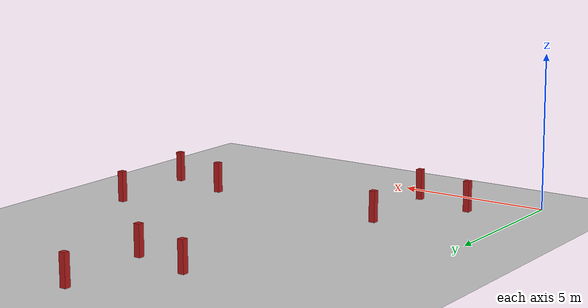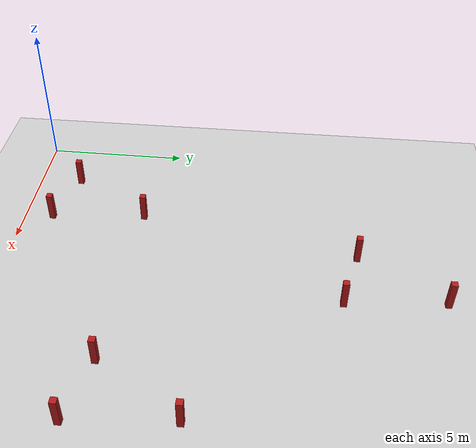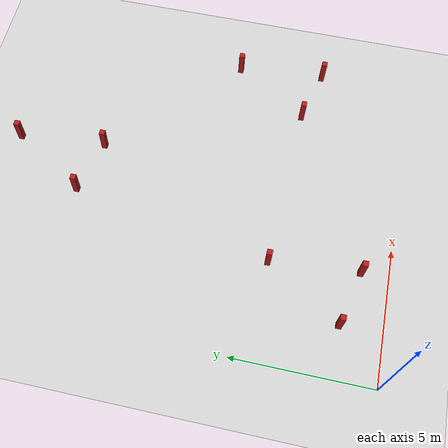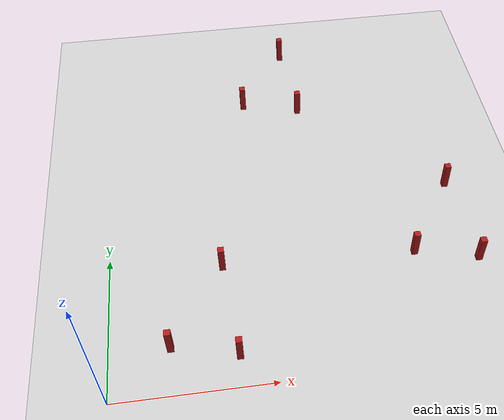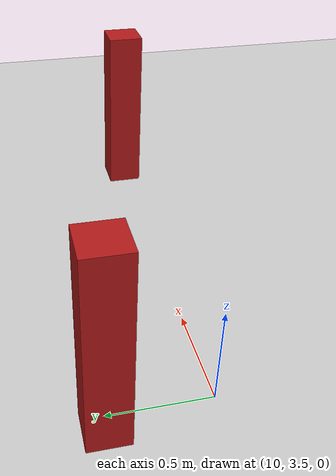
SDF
<sdf version="1.6">
 <world name="default">
  <light name="sun" type="directional">
   <pose>0 0 10 0 -0 0</pose>
   <diffuse>0.8 0.8 0.8 1</diffuse>
   <specular>0.1 0.1 0.1 1</specular>
   <attenuation>
    <range>1000</range>
    <constant>0.9</constant>
    <linear>0.01</linear>
    <quadratic>0.001</quadratic>
   </attenuation>
   <direction>-0.5 0.5 -1</direction>
  </light>
  <model name="ground_plane">
   <static>1</static>
   <link name="link">
    <collision name="collision">
     <geometry><plane><normal>0 0 1</normal><size>100 100</size></plane></geometry>
     <surface><friction><ode><mu>100</mu><mu2>50</mu2></ode></friction></surface>
    </collision>
    <visual name="visual">
     <cast_shadows>0</cast_shadows>
     <geometry><plane><normal>0 0 1</normal><size>100 100</size></plane></geometry>
     <material>
      <script><uri>file://media/materials/scripts/gazebo.material</uri><name>Gazebo/Grey</name></script>
     </material>
    </visual>
   </link>
  </model>
  <gravity>0 0 -9.8</gravity>
  <magnetic_field>6e-06 2.3e-05 -4.2e-05</magnetic_field>
  <atmosphere type="adiabatic"/>
  <physics name="default_physics" default="0" type="ode">
   <max_step_size>0.001</max_step_size>
   <real_time_factor>1</real_time_factor>
   <real_time_update_rate>1000</real_time_update_rate>
  </physics>
  <scene><ambient>0.4 0.4 0.4 1</ambient><background>0.7 0.7 0.7 1</background><shadows>1</shadows></scene>
  <spherical_coordinates>
   <surface_model>EARTH_WGS84</surface_model>
   <latitude_deg>0</latitude_deg>
   <longitude_deg>0</longitude_deg>
   <elevation>0</elevation>
   <heading_deg>0</heading_deg>
  </spherical_coordinates>
  <model name="obs">
   <link name="link">
    <pose>-0.320331 -0.567867 0 0 -0 0</pose>
    <inertial>
     <mass>1</mass>
     <inertia>
      <ixx>0.166667</ixx>
      <ixy>0</ixy>
      <ixz>0</ixz>
      <iyy>0.166667</iyy>
      <iyz>0</iyz>
      <izz>0.166667</izz>
     </inertia>
    </inertial>
    <visual name="visual">
     <geometry><box><size>0.2 0.2 1</size></box></geometry>
     <material>
      <script><name>Gazebo/Grey</name><uri>file://media/materials/scripts/gazebo.material</uri></script>
      <ambient>0.7 0.1 0.1 1</ambient>
      <diffuse>0.7 0.7 0.7 1</diffuse>
      <specular>0.01 0.01 0.01 1</specular>
      <emissive>0 0 0 1</emissive>
      <shader type="vertex"><normal_map>__default__</normal_map></shader>
     </material>
    </visual>
    <collision name="collision">
     <geometry><box><size>0.2 0.2 1</size></box></geometry>
     <surface>
      <friction>
       <ode><mu>1</mu><mu2>1</mu2><fdir1>0 0 0</fdir1><slip1>0</slip1><slip2>0</slip2></ode>
       <torsional>
        <coefficient>1</coefficient>
        <patch_radius>0</patch_radius>
        <surface_radius>0</surface_radius>
        <use_patch_radius>1</use_patch_radius>
        <ode><slip>0</slip></ode>
       </torsional>
      </friction>
      <bounce><restitution_coefficient>0</restitution_coefficient><threshold>1e+06</threshold></bounce>
      <contact>
       <collide_without_contact>0</collide_without_contact>
       <collide_without_contact_bitmask>1</collide_without_contact_bitmask>
       <collide_bitmask>1</collide_bitmask>
       <ode>
        <soft_cfm>0</soft_cfm>
        <soft_erp>0.2</soft_erp>
        <kp>1e+13</kp>
        <kd>1</kd>
        <max_vel>0.01</max_vel>
        <min_depth>0</min_depth>
       </ode>
       <bullet>
        <split_impulse>1</split_impulse>
        <split_impulse_penetration_threshold>-0.01</split_impulse_penetration_threshold>
        <soft_cfm>0</soft_cfm>
        <soft_erp>0.2</soft_erp>
        <kp>1e+13</kp>
        <kd>1</kd>
       </bullet>
      </contact>
     </surface>
    </collision>
   </link>
   <link name="link_clone">
    <pose>1.72328 -1.08027 -4e-06 2e-06 1e-06 4e-05</pose>
    <inertial>
     <mass>1</mass>
     <inertia>
      <ixx>0.166667</ixx>
      <ixy>0</ixy>
      <ixz>0</ixz>
      <iyy>0.166667</iyy>
      <iyz>0</iyz>
      <izz>0.166667</izz>
     </inertia>
    </inertial>
    <visual name="visual">
     <geometry><box><size>0.2 0.2 1</size></box></geometry>
     <material>
      <script><name>Gazebo/Grey</name><uri>file://media/materials/scripts/gazebo.material</uri></script>
      <ambient>0.7 0.1 0.1 1</ambient>
      <diffuse>0.7 0.7 0.7 1</diffuse>
      <specular>0.01 0.01 0.01 1</specular>
      <emissive>0 0 0 1</emissive>
      <shader type="vertex"><normal_map>__default__</normal_map></shader>
     </material>
    </visual>
    <collision name="collision">
     <geometry><box><size>0.2 0.2 1</size></box></geometry>
     <surface>
      <friction>
       <ode><mu>1</mu><mu2>1</mu2><fdir1>0 0 0</fdir1><slip1>0</slip1><slip2>0</slip2></ode>
       <torsional>
        <coefficient>1</coefficient>
        <patch_radius>0</patch_radius>
        <surface_radius>0</surface_radius>
        <use_patch_radius>1</use_patch_radius>
        <ode><slip>0</slip></ode>
       </torsional>
      </friction>
      <bounce><restitution_coefficient>0</restitution_coefficient><threshold>1e+06</threshold></bounce>
      <contact>
       <collide_without_contact>0</collide_without_contact>
       <collide_without_contact_bitmask>1</collide_without_contact_bitmask>
       <collide_bitmask>1</collide_bitmask>
       <ode>
        <soft_cfm>0</soft_cfm>
        <soft_erp>0.2</soft_erp>
        <kp>1e+13</kp>
        <kd>1</kd>
        <max_vel>0.01</max_vel>
        <min_depth>0</min_depth>
       </ode>
       <bullet>
        <split_impulse>1</split_impulse>
        <split_impulse_penetration_threshold>-0.01</split_impulse_penetration_threshold>
        <soft_cfm>0</soft_cfm>
        <soft_erp>0.2</soft_erp>
        <kp>1e+13</kp>
        <kd>1</kd>
       </bullet>
      </contact>
     </surface>
    </collision>
   </link>
   <link name="link_clone_0">
    <pose>1.44556 2.17598 3e-06 2e-06 1e-06 4e-05</pose>
    <inertial>
     <mass>1</mass>
     <inertia>
      <ixx>0.166667</ixx>
      <ixy>0</ixy>
      <ixz>0</ixz>
      <iyy>0.166667</iyy>
      <iyz>0</iyz>
      <izz>0.166667</izz>
     </inertia>
    </inertial>
    <visual name="visual">
     <geometry><box><size>0.2 0.2 1</size></box></geometry>
     <material>
      <script><name>Gazebo/Grey</name><uri>file://media/materials/scripts/gazebo.material</uri></script>
      <ambient>0.7 0.1 0.1 1</ambient>
      <diffuse>0.7 0.7 0.7 1</diffuse>
      <specular>0.01 0.01 0.01 1</specular>
      <emissive>0 0 0 1</emissive>
      <shader type="vertex"><normal_map>__default__</normal_map></shader>
     </material>
    </visual>
    <collision name="collision">
     <geometry><box><size>0.2 0.2 1</size></box></geometry>
     <surface>
      <friction>
       <ode><mu>1</mu><mu2>1</mu2><fdir1>0 0 0</fdir1><slip1>0</slip1><slip2>0</slip2></ode>
       <torsional>
        <coefficient>1</coefficient>
        <patch_radius>0</patch_radius>
        <surface_radius>0</surface_radius>
        <use_patch_radius>1</use_patch_radius>
        <ode><slip>0</slip></ode>
       </torsional>
      </friction>
      <bounce><restitution_coefficient>0</restitution_coefficient><threshold>1e+06</threshold></bounce>
      <contact>
       <collide_without_contact>0</collide_without_contact>
       <collide_without_contact_bitmask>1</collide_without_contact_bitmask>
       <collide_bitmask>1</collide_bitmask>
       <ode>
        <soft_cfm>0</soft_cfm>
        <soft_erp>0.2</soft_erp>
        <kp>1e+13</kp>
        <kd>1</kd>
        <max_vel>0.01</max_vel>
        <min_depth>0</min_depth>
       </ode>
       <bullet>
        <split_impulse>1</split_impulse>
        <split_impulse_penetration_threshold>-0.01</split_impulse_penetration_threshold>
        <soft_cfm>0</soft_cfm>
        <soft_erp>0.2</soft_erp>
        <kp>1e+13</kp>
        <kd>1</kd>
       </bullet>
      </contact>
     </surface>
    </collision>
   </link>
   <static>1</static>
   <pose>2.18274 2.08034 0.5 -2e-06 -1e-06 -4e-05</pose>
  </model>
  <model name="obs_clone">
   <link name="link">
    <pose>-0.320331 -0.567867 0 0 -0 0</pose>
    <inertial>
     <mass>1</mass>
     <inertia>
      <ixx>0.166667</ixx>
      <ixy>0</ixy>
      <ixz>0</ixz>
      <iyy>0.166667</iyy>
      <iyz>0</iyz>
      <izz>0.166667</izz>
     </inertia>
    </inertial>
    <visual name="visual">
     <geometry><box><size>0.2 0.2 1</size></box></geometry>
     <material>
      <script><name>Gazebo/Grey</name><uri>file://media/materials/scripts/gazebo.material</uri></script>
      <ambient>0.7 0.1 0.1 1</ambient>
      <diffuse>0.7 0.7 0.7 1</diffuse>
      <specular>0.01 0.01 0.01 1</specular>
      <emissive>0 0 0 1</emissive>
      <shader type="vertex"><normal_map>__default__</normal_map></shader>
     </material>
    </visual>
    <collision name="collision">
     <geometry><box><size>0.2 0.2 1</size></box></geometry>
     <surface>
      <friction>
       <ode><mu>1</mu><mu2>1</mu2><fdir1>0 0 0</fdir1><slip1>0</slip1><slip2>0</slip2></ode>
       <torsional>
        <coefficient>1</coefficient>
        <patch_radius>0</patch_radius>
        <surface_radius>0</surface_radius>
        <use_patch_radius>1</use_patch_radius>
        <ode><slip>0</slip></ode>
       </torsional>
      </friction>
      <bounce><restitution_coefficient>0</restitution_coefficient><threshold>1e+06</threshold></bounce>
      <contact>
       <collide_without_contact>0</collide_without_contact>
       <collide_without_contact_bitmask>1</collide_without_contact_bitmask>
       <collide_bitmask>1</collide_bitmask>
       <ode>
        <soft_cfm>0</soft_cfm>
        <soft_erp>0.2</soft_erp>
        <kp>1e+13</kp>
        <kd>1</kd>
        <max_vel>0.01</max_vel>
        <min_depth>0</min_depth>
       </ode>
       <bullet>
        <split_impulse>1</split_impulse>
        <split_impulse_penetration_threshold>-0.01</split_impulse_penetration_threshold>
        <soft_cfm>0</soft_cfm>
        <soft_erp>0.2</soft_erp>
        <kp>1e+13</kp>
        <kd>1</kd>
       </bullet>
      </contact>
     </surface>
    </collision>
   </link>
   <link name="link_clone">
    <pose>1.72328 -1.08027 -4e-06 2e-06 1e-06 4e-05</pose>
    <inertial>
     <mass>1</mass>
     <inertia>
      <ixx>0.166667</ixx>
      <ixy>0</ixy>
      <ixz>0</ixz>
      <iyy>0.166667</iyy>
      <iyz>0</iyz>
      <izz>0.166667</izz>
     </inertia>
    </inertial>
    <visual name="visual">
     <geometry><box><size>0.2 0.2 1</size></box></geometry>
     <material>
      <script><name>Gazebo/Grey</name><uri>file://media/materials/scripts/gazebo.material</uri></script>
      <ambient>0.7 0.1 0.1 1</ambient>
      <diffuse>0.7 0.7 0.7 1</diffuse>
      <specular>0.01 0.01 0.01 1</specular>
      <emissive>0 0 0 1</emissive>
      <shader type="vertex"><normal_map>__default__</normal_map></shader>
     </material>
    </visual>
    <collision name="collision">
     <geometry><box><size>0.2 0.2 1</size></box></geometry>
     <surface>
      <friction>
       <ode><mu>1</mu><mu2>1</mu2><fdir1>0 0 0</fdir1><slip1>0</slip1><slip2>0</slip2></ode>
       <torsional>
        <coefficient>1</coefficient>
        <patch_radius>0</patch_radius>
        <surface_radius>0</surface_radius>
        <use_patch_radius>1</use_patch_radius>
        <ode><slip>0</slip></ode>
       </torsional>
      </friction>
      <bounce><restitution_coefficient>0</restitution_coefficient><threshold>1e+06</threshold></bounce>
      <contact>
       <collide_without_contact>0</collide_without_contact>
       <collide_without_contact_bitmask>1</collide_without_contact_bitmask>
       <collide_bitmask>1</collide_bitmask>
       <ode>
        <soft_cfm>0</soft_cfm>
        <soft_erp>0.2</soft_erp>
        <kp>1e+13</kp>
        <kd>1</kd>
        <max_vel>0.01</max_vel>
        <min_depth>0</min_depth>
       </ode>
       <bullet>
        <split_impulse>1</split_impulse>
        <split_impulse_penetration_threshold>-0.01</split_impulse_penetration_threshold>
        <soft_cfm>0</soft_cfm>
        <soft_erp>0.2</soft_erp>
        <kp>1e+13</kp>
        <kd>1</kd>
       </bullet>
      </contact>
     </surface>
    </collision>
   </link>
   <link name="link_clone_0">
    <pose>1.44556 2.17598 3e-06 2e-06 1e-06 4e-05</pose>
    <inertial>
     <mass>1</mass>
     <inertia>
      <ixx>0.166667</ixx>
      <ixy>0</ixy>
      <ixz>0</ixz>
      <iyy>0.166667</iyy>
      <iyz>0</iyz>
      <izz>0.166667</izz>
     </inertia>
    </inertial>
    <visual name="visual">
     <geometry><box><size>0.2 0.2 1</size></box></geometry>
     <material>
      <script><name>Gazebo/Grey</name><uri>file://media/materials/scripts/gazebo.material</uri></script>
      <ambient>0.7 0.1 0.1 1</ambient>
      <diffuse>0.7 0.7 0.7 1</diffuse>
      <specular>0.01 0.01 0.01 1</specular>
      <emissive>0 0 0 1</emissive>
      <shader type="vertex"><normal_map>__default__</normal_map></shader>
     </material>
    </visual>
    <collision name="collision">
     <geometry><box><size>0.2 0.2 1</size></box></geometry>
     <surface>
      <friction>
       <ode><mu>1</mu><mu2>1</mu2><fdir1>0 0 0</fdir1><slip1>0</slip1><slip2>0</slip2></ode>
       <torsional>
        <coefficient>1</coefficient>
        <patch_radius>0</patch_radius>
        <surface_radius>0</surface_radius>
        <use_patch_radius>1</use_patch_radius>
        <ode><slip>0</slip></ode>
       </torsional>
      </friction>
      <bounce><restitution_coefficient>0</restitution_coefficient><threshold>1e+06</threshold></bounce>
      <contact>
       <collide_without_contact>0</collide_without_contact>
       <collide_without_contact_bitmask>1</collide_without_contact_bitmask>
       <collide_bitmask>1</collide_bitmask>
       <ode>
        <soft_cfm>0</soft_cfm>
        <soft_erp>0.2</soft_erp>
        <kp>1e+13</kp>
        <kd>1</kd>
        <max_vel>0.01</max_vel>
        <min_depth>0</min_depth>
       </ode>
       <bullet>
        <split_impulse>1</split_impulse>
        <split_impulse_penetration_threshold>-0.01</split_impulse_penetration_threshold>
        <soft_cfm>0</soft_cfm>
        <soft_erp>0.2</soft_erp>
        <kp>1e+13</kp>
        <kd>1</kd>
       </bullet>
      </contact>
     </surface>
    </collision>
   </link>
   <static>1</static>
   <pose>10.2611 4.57362 0.5 -2e-06 -1e-06 -4e-05</pose>
  </model>
  <model name="obs_clone_0">
   <link name="link">
    <pose>-0.320331 -0.567867 0 0 -0 0</pose>
    <inertial>
     <mass>1</mass>
     <inertia>
      <ixx>0.166667</ixx>
      <ixy>0</ixy>
      <ixz>0</ixz>
      <iyy>0.166667</iyy>
      <iyz>0</iyz>
      <izz>0.166667</izz>
     </inertia>
    </inertial>
    <visual name="visual">
     <geometry><box><size>0.2 0.2 1</size></box></geometry>
     <material>
      <script><name>Gazebo/Grey</name><uri>file://media/materials/scripts/gazebo.material</uri></script>
      <ambient>0.7 0.1 0.1 1</ambient>
      <diffuse>0.7 0.7 0.7 1</diffuse>
      <specular>0.01 0.01 0.01 1</specular>
      <emissive>0 0 0 1</emissive>
      <shader type="vertex"><normal_map>__default__</normal_map></shader>
     </material>
    </visual>
    <collision name="collision">
     <geometry><box><size>0.2 0.2 1</size></box></geometry>
     <surface>
      <friction>
       <ode><mu>1</mu><mu2>1</mu2><fdir1>0 0 0</fdir1><slip1>0</slip1><slip2>0</slip2></ode>
       <torsional>
        <coefficient>1</coefficient>
        <patch_radius>0</patch_radius>
        <surface_radius>0</surface_radius>
        <use_patch_radius>1</use_patch_radius>
        <ode><slip>0</slip></ode>
       </torsional>
      </friction>
      <bounce><restitution_coefficient>0</restitution_coefficient><threshold>1e+06</threshold></bounce>
      <contact>
       <collide_without_contact>0</collide_without_contact>
       <collide_without_contact_bitmask>1</collide_without_contact_bitmask>
       <collide_bitmask>1</collide_bitmask>
       <ode>
        <soft_cfm>0</soft_cfm>
        <soft_erp>0.2</soft_erp>
        <kp>1e+13</kp>
        <kd>1</kd>
        <max_vel>0.01</max_vel>
        <min_depth>0</min_depth>
       </ode>
       <bullet>
        <split_impulse>1</split_impulse>
        <split_impulse_penetration_threshold>-0.01</split_impulse_penetration_threshold>
        <soft_cfm>0</soft_cfm>
        <soft_erp>0.2</soft_erp>
        <kp>1e+13</kp>
        <kd>1</kd>
       </bullet>
      </contact>
     </surface>
    </collision>
   </link>
   <link name="link_clone">
    <pose>1.72328 -1.08027 -4e-06 2e-06 1e-06 4e-05</pose>
    <inertial>
     <mass>1</mass>
     <inertia>
      <ixx>0.166667</ixx>
      <ixy>0</ixy>
      <ixz>0</ixz>
      <iyy>0.166667</iyy>
      <iyz>0</iyz>
      <izz>0.166667</izz>
     </inertia>
    </inertial>
    <visual name="visual">
     <geometry><box><size>0.2 0.2 1</size></box></geometry>
     <material>
      <script><name>Gazebo/Grey</name><uri>file://media/materials/scripts/gazebo.material</uri></script>
      <ambient>0.7 0.1 0.1 1</ambient>
      <diffuse>0.7 0.7 0.7 1</diffuse>
      <specular>0.01 0.01 0.01 1</specular>
      <emissive>0 0 0 1</emissive>
      <shader type="vertex"><normal_map>__default__</normal_map></shader>
     </material>
    </visual>
    <collision name="collision">
     <geometry><box><size>0.2 0.2 1</size></box></geometry>
     <surface>
      <friction>
       <ode><mu>1</mu><mu2>1</mu2><fdir1>0 0 0</fdir1><slip1>0</slip1><slip2>0</slip2></ode>
       <torsional>
        <coefficient>1</coefficient>
        <patch_radius>0</patch_radius>
        <surface_radius>0</surface_radius>
        <use_patch_radius>1</use_patch_radius>
        <ode><slip>0</slip></ode>
       </torsional>
      </friction>
      <bounce><restitution_coefficient>0</restitution_coefficient><threshold>1e+06</threshold></bounce>
      <contact>
       <collide_without_contact>0</collide_without_contact>
       <collide_without_contact_bitmask>1</collide_without_contact_bitmask>
       <collide_bitmask>1</collide_bitmask>
       <ode>
        <soft_cfm>0</soft_cfm>
        <soft_erp>0.2</soft_erp>
        <kp>1e+13</kp>
        <kd>1</kd>
        <max_vel>0.01</max_vel>
        <min_depth>0</min_depth>
       </ode>
       <bullet>
        <split_impulse>1</split_impulse>
        <split_impulse_penetration_threshold>-0.01</split_impulse_penetration_threshold>
        <soft_cfm>0</soft_cfm>
        <soft_erp>0.2</soft_erp>
        <kp>1e+13</kp>
        <kd>1</kd>
       </bullet>
      </contact>
     </surface>
    </collision>
   </link>
   <link name="link_clone_0">
    <pose>1.44556 2.17598 3e-06 2e-06 1e-06 4e-05</pose>
    <inertial>
     <mass>1</mass>
     <inertia>
      <ixx>0.166667</ixx>
      <ixy>0</ixy>
      <ixz>0</ixz>
      <iyy>0.166667</iyy>
      <iyz>0</iyz>
      <izz>0.166667</izz>
     </inertia>
    </inertial>
    <visual name="visual">
     <geometry><box><size>0.2 0.2 1</size></box></geometry>
     <material>
      <script><name>Gazebo/Grey</name><uri>file://media/materials/scripts/gazebo.material</uri></script>
      <ambient>0.7 0.1 0.1 1</ambient>
      <diffuse>0.7 0.7 0.7 1</diffuse>
      <specular>0.01 0.01 0.01 1</specular>
      <emissive>0 0 0 1</emissive>
      <shader type="vertex"><normal_map>__default__</normal_map></shader>
     </material>
    </visual>
    <collision name="collision">
     <geometry><box><size>0.2 0.2 1</size></box></geometry>
     <surface>
      <friction>
       <ode><mu>1</mu><mu2>1</mu2><fdir1>0 0 0</fdir1><slip1>0</slip1><slip2>0</slip2></ode>
       <torsional>
        <coefficient>1</coefficient>
        <patch_radius>0</patch_radius>
        <surface_radius>0</surface_radius>
        <use_patch_radius>1</use_patch_radius>
        <ode><slip>0</slip></ode>
       </torsional>
      </friction>
      <bounce><restitution_coefficient>0</restitution_coefficient><threshold>1e+06</threshold></bounce>
      <contact>
       <collide_without_contact>0</collide_without_contact>
       <collide_without_contact_bitmask>1</collide_without_contact_bitmask>
       <collide_bitmask>1</collide_bitmask>
       <ode>
        <soft_cfm>0</soft_cfm>
        <soft_erp>0.2</soft_erp>
        <kp>1e+13</kp>
        <kd>1</kd>
        <max_vel>0.01</max_vel>
        <min_depth>0</min_depth>
       </ode>
       <bullet>
        <split_impulse>1</split_impulse>
        <split_impulse_penetration_threshold>-0.01</split_impulse_penetration_threshold>
        <soft_cfm>0</soft_cfm>
        <soft_erp>0.2</soft_erp>
        <kp>1e+13</kp>
        <kd>1</kd>
       </bullet>
      </contact>
     </surface>
    </collision>
   </link>
   <static>1</static>
   <pose>5.33691 12.2741 0.5 -2e-06 -1e-06 -4e-05</pose>
  </model>
 </world>
</sdf>
